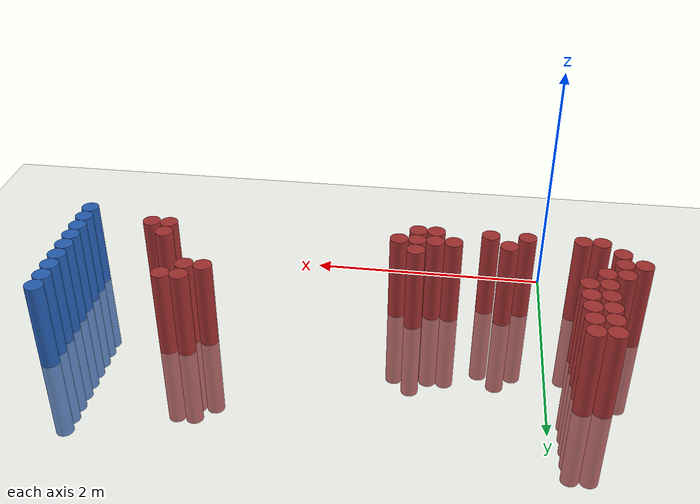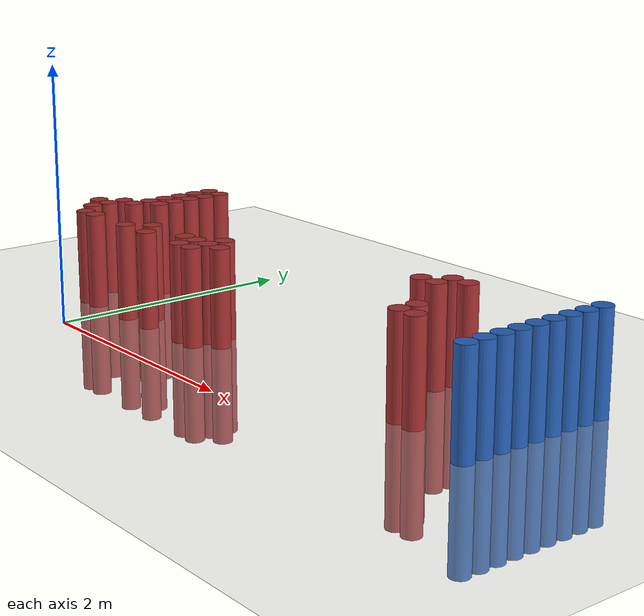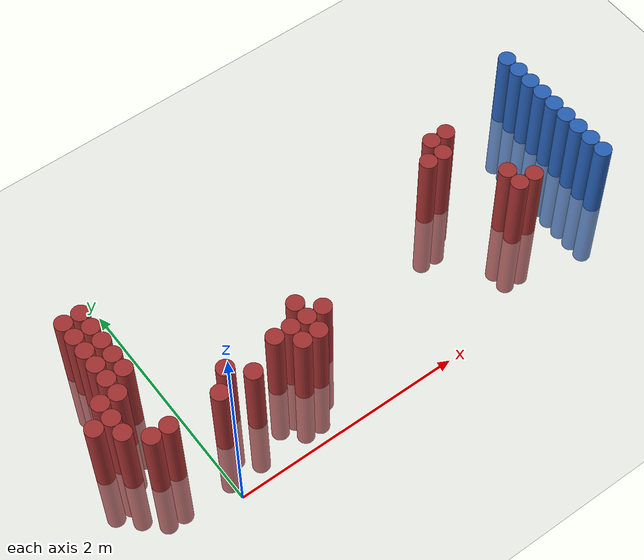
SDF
<sdf version="1.6">
 <world name="default">
  <model name="ground_plane">
   <static>1</static>
   <link name="link">
    <collision name="collision">
     <geometry><plane><normal>0 0 1</normal><size>100 100</size></plane></geometry>
     <surface><friction><ode><mu>100</mu><mu2>50</mu2></ode></friction></surface>
    </collision>
    <visual name="visual">
     <cast_shadows>0</cast_shadows>
     <geometry><plane><normal>0 0 1</normal><size>100 100</size></plane></geometry>
     <material>
      <script><uri>file://media/materials/scripts/gazebo.material</uri><name>Gazebo/Grey</name></script>
     </material>
    </visual>
   </link>
  </model>
  <model name="unit_cylinder_122">
   <static>1</static>
   <pose>3.925000 0.625000 0.000000 0.000000 0.000000 0.000000</pose>
   <link name="link">
    <inertial>
     <mass>1</mass>
     <inertia><ixx>0.145833</ixx><ixy>0</ixy><ixz>0</ixz><iyy>0.145833</iyy><iyz>0</iyz><izz>0.125</izz></inertia>
    </inertial>
    <collision name="collision">
     <geometry><cylinder><radius>0.075000</radius><length>1.5</length></cylinder></geometry>
    </collision>
    <visual name="visual">
     <geometry><cylinder><radius>0.075000</radius><length>1.5</length></cylinder></geometry>
     <material>
      <ambient>0.152000 0.379000 0.720000 1</ambient>
      <diffuse>0.152000 0.379000 0.720000 1</diffuse>
     </material>
     <material>
      <script><name>Gazebo/Grey</name><uri>file://media/materials/scripts/gazebo.material</uri></script>
     </material>
    </visual>
   </link>
  </model>
  <model name="unit_cylinder_124">
   <static>1</static>
   <pose>3.925000 0.775000 0.000000 0.000000 0.000000 0.000000</pose>
   <link name="link">
    <inertial>
     <mass>1</mass>
     <inertia><ixx>0.145833</ixx><ixy>0</ixy><ixz>0</ixz><iyy>0.145833</iyy><iyz>0</iyz><izz>0.125</izz></inertia>
    </inertial>
    <collision name="collision">
     <geometry><cylinder><radius>0.075000</radius><length>1.5</length></cylinder></geometry>
    </collision>
    <visual name="visual">
     <geometry><cylinder><radius>0.075000</radius><length>1.5</length></cylinder></geometry>
     <material>
      <ambient>0.152000 0.379000 0.720000 1</ambient>
      <diffuse>0.152000 0.379000 0.720000 1</diffuse>
     </material>
     <material>
      <script><name>Gazebo/Grey</name><uri>file://media/materials/scripts/gazebo.material</uri></script>
     </material>
    </visual>
   </link>
  </model>
  <model name="unit_cylinder_126">
   <static>1</static>
   <pose>3.925000 0.925000 0.000000 0.000000 0.000000 0.000000</pose>
   <link name="link">
    <inertial>
     <mass>1</mass>
     <inertia><ixx>0.145833</ixx><ixy>0</ixy><ixz>0</ixz><iyy>0.145833</iyy><iyz>0</iyz><izz>0.125</izz></inertia>
    </inertial>
    <collision name="collision">
     <geometry><cylinder><radius>0.075000</radius><length>1.5</length></cylinder></geometry>
    </collision>
    <visual name="visual">
     <geometry><cylinder><radius>0.075000</radius><length>1.5</length></cylinder></geometry>
     <material>
      <ambient>0.152000 0.379000 0.720000 1</ambient>
      <diffuse>0.152000 0.379000 0.720000 1</diffuse>
     </material>
     <material>
      <script><name>Gazebo/Grey</name><uri>file://media/materials/scripts/gazebo.material</uri></script>
     </material>
    </visual>
   </link>
  </model>
  <model name="unit_cylinder_128">
   <static>1</static>
   <pose>3.925000 1.075000 0.000000 0.000000 0.000000 0.000000</pose>
   <link name="link">
    <inertial>
     <mass>1</mass>
     <inertia><ixx>0.145833</ixx><ixy>0</ixy><ixz>0</ixz><iyy>0.145833</iyy><iyz>0</iyz><izz>0.125</izz></inertia>
    </inertial>
    <collision name="collision">
     <geometry><cylinder><radius>0.075000</radius><length>1.5</length></cylinder></geometry>
    </collision>
    <visual name="visual">
     <geometry><cylinder><radius>0.075000</radius><length>1.5</length></cylinder></geometry>
     <material>
      <ambient>0.152000 0.379000 0.720000 1</ambient>
      <diffuse>0.152000 0.379000 0.720000 1</diffuse>
     </material>
     <material>
      <script><name>Gazebo/Grey</name><uri>file://media/materials/scripts/gazebo.material</uri></script>
     </material>
    </visual>
   </link>
  </model>
  <model name="unit_cylinder_130">
   <static>1</static>
   <pose>3.925000 1.225000 0.000000 0.000000 0.000000 0.000000</pose>
   <link name="link">
    <inertial>
     <mass>1</mass>
     <inertia><ixx>0.145833</ixx><ixy>0</ixy><ixz>0</ixz><iyy>0.145833</iyy><iyz>0</iyz><izz>0.125</izz></inertia>
    </inertial>
    <collision name="collision">
     <geometry><cylinder><radius>0.075000</radius><length>1.5</length></cylinder></geometry>
    </collision>
    <visual name="visual">
     <geometry><cylinder><radius>0.075000</radius><length>1.5</length></cylinder></geometry>
     <material>
      <ambient>0.152000 0.379000 0.720000 1</ambient>
      <diffuse>0.152000 0.379000 0.720000 1</diffuse>
     </material>
     <material>
      <script><name>Gazebo/Grey</name><uri>file://media/materials/scripts/gazebo.material</uri></script>
     </material>
    </visual>
   </link>
  </model>
  <model name="unit_cylinder_132">
   <static>1</static>
   <pose>3.925000 1.375000 0.000000 0.000000 0.000000 0.000000</pose>
   <link name="link">
    <inertial>
     <mass>1</mass>
     <inertia><ixx>0.145833</ixx><ixy>0</ixy><ixz>0</ixz><iyy>0.145833</iyy><iyz>0</iyz><izz>0.125</izz></inertia>
    </inertial>
    <collision name="collision">
     <geometry><cylinder><radius>0.075000</radius><length>1.5</length></cylinder></geometry>
    </collision>
    <visual name="visual">
     <geometry><cylinder><radius>0.075000</radius><length>1.5</length></cylinder></geometry>
     <material>
      <ambient>0.152000 0.379000 0.720000 1</ambient>
      <diffuse>0.152000 0.379000 0.720000 1</diffuse>
     </material>
     <material>
      <script><name>Gazebo/Grey</name><uri>file://media/materials/scripts/gazebo.material</uri></script>
     </material>
    </visual>
   </link>
  </model>
  <model name="unit_cylinder_134">
   <static>1</static>
   <pose>3.925000 1.525000 0.000000 0.000000 0.000000 0.000000</pose>
   <link name="link">
    <inertial>
     <mass>1</mass>
     <inertia><ixx>0.145833</ixx><ixy>0</ixy><ixz>0</ixz><iyy>0.145833</iyy><iyz>0</iyz><izz>0.125</izz></inertia>
    </inertial>
    <collision name="collision">
     <geometry><cylinder><radius>0.075000</radius><length>1.5</length></cylinder></geometry>
    </collision>
    <visual name="visual">
     <geometry><cylinder><radius>0.075000</radius><length>1.5</length></cylinder></geometry>
     <material>
      <ambient>0.152000 0.379000 0.720000 1</ambient>
      <diffuse>0.152000 0.379000 0.720000 1</diffuse>
     </material>
     <material>
      <script><name>Gazebo/Grey</name><uri>file://media/materials/scripts/gazebo.material</uri></script>
     </material>
    </visual>
   </link>
  </model>
  <model name="unit_cylinder_136">
   <static>1</static>
   <pose>3.925000 1.675000 0.000000 0.000000 0.000000 0.000000</pose>
   <link name="link">
    <inertial>
     <mass>1</mass>
     <inertia><ixx>0.145833</ixx><ixy>0</ixy><ixz>0</ixz><iyy>0.145833</iyy><iyz>0</iyz><izz>0.125</izz></inertia>
    </inertial>
    <collision name="collision">
     <geometry><cylinder><radius>0.075000</radius><length>1.5</length></cylinder></geometry>
    </collision>
    <visual name="visual">
     <geometry><cylinder><radius>0.075000</radius><length>1.5</length></cylinder></geometry>
     <material>
      <ambient>0.152000 0.379000 0.720000 1</ambient>
      <diffuse>0.152000 0.379000 0.720000 1</diffuse>
     </material>
     <material>
      <script><name>Gazebo/Grey</name><uri>file://media/materials/scripts/gazebo.material</uri></script>
     </material>
    </visual>
   </link>
  </model>
  <model name="unit_cylinder_327">
   <static>1</static>
   <pose>-0.725000 0.775000 0.000000 0.000000 0.000000 0.000000</pose>
   <link name="link">
    <inertial>
     <mass>1</mass>
     <inertia><ixx>0.145833</ixx><ixy>0</ixy><ixz>0</ixz><iyy>0.145833</iyy><iyz>0</iyz><izz>0.125</izz></inertia>
    </inertial>
    <collision name="collision">
     <geometry><cylinder><radius>0.075000</radius><length>1.5</length></cylinder></geometry>
    </collision>
    <visual name="visual">
     <geometry><cylinder><radius>0.075000</radius><length>1.5</length></cylinder></geometry>
     <material>
      <ambient>0.648000 0.192000 0.192000 1</ambient>
      <diffuse>0.648000 0.192000 0.192000 1</diffuse>
     </material>
     <material>
      <script><name>Gazebo/Grey</name><uri>file://media/materials/scripts/gazebo.material</uri></script>
     </material>
    </visual>
   </link>
  </model>
  <model name="unit_cylinder_330">
   <static>1</static>
   <pose>-0.575000 0.625000 0.000000 0.000000 0.000000 0.000000</pose>
   <link name="link">
    <inertial>
     <mass>1</mass>
     <inertia><ixx>0.145833</ixx><ixy>0</ixy><ixz>0</ixz><iyy>0.145833</iyy><iyz>0</iyz><izz>0.125</izz></inertia>
    </inertial>
    <collision name="collision">
     <geometry><cylinder><radius>0.075000</radius><length>1.5</length></cylinder></geometry>
    </collision>
    <visual name="visual">
     <geometry><cylinder><radius>0.075000</radius><length>1.5</length></cylinder></geometry>
     <material>
      <ambient>0.648000 0.192000 0.192000 1</ambient>
      <diffuse>0.648000 0.192000 0.192000 1</diffuse>
     </material>
     <material>
      <script><name>Gazebo/Grey</name><uri>file://media/materials/scripts/gazebo.material</uri></script>
     </material>
    </visual>
   </link>
  </model>
  <model name="unit_cylinder_331">
   <static>1</static>
   <pose>-0.575000 0.775000 0.000000 0.000000 0.000000 0.000000</pose>
   <link name="link">
    <inertial>
     <mass>1</mass>
     <inertia><ixx>0.145833</ixx><ixy>0</ixy><ixz>0</ixz><iyy>0.145833</iyy><iyz>0</iyz><izz>0.125</izz></inertia>
    </inertial>
    <collision name="collision">
     <geometry><cylinder><radius>0.075000</radius><length>1.5</length></cylinder></geometry>
    </collision>
    <visual name="visual">
     <geometry><cylinder><radius>0.075000</radius><length>1.5</length></cylinder></geometry>
     <material>
      <ambient>0.648000 0.192000 0.192000 1</ambient>
      <diffuse>0.648000 0.192000 0.192000 1</diffuse>
     </material>
     <material>
      <script><name>Gazebo/Grey</name><uri>file://media/materials/scripts/gazebo.material</uri></script>
     </material>
    </visual>
   </link>
  </model>
  <model name="unit_cylinder_332">
   <static>1</static>
   <pose>-0.575000 0.925000 0.000000 0.000000 0.000000 0.000000</pose>
   <link name="link">
    <inertial>
     <mass>1</mass>
     <inertia><ixx>0.145833</ixx><ixy>0</ixy><ixz>0</ixz><iyy>0.145833</iyy><iyz>0</iyz><izz>0.125</izz></inertia>
    </inertial>
    <collision name="collision">
     <geometry><cylinder><radius>0.075000</radius><length>1.5</length></cylinder></geometry>
    </collision>
    <visual name="visual">
     <geometry><cylinder><radius>0.075000</radius><length>1.5</length></cylinder></geometry>
     <material>
      <ambient>0.648000 0.192000 0.192000 1</ambient>
      <diffuse>0.648000 0.192000 0.192000 1</diffuse>
     </material>
     <material>
      <script><name>Gazebo/Grey</name><uri>file://media/materials/scripts/gazebo.material</uri></script>
     </material>
    </visual>
   </link>
  </model>
  <model name="unit_cylinder_341">
   <static>1</static>
   <pose>-0.425000 0.475000 0.000000 0.000000 0.000000 0.000000</pose>
   <link name="link">
    <inertial>
     <mass>1</mass>
     <inertia><ixx>0.145833</ixx><ixy>0</ixy><ixz>0</ixz><iyy>0.145833</iyy><iyz>0</iyz><izz>0.125</izz></inertia>
    </inertial>
    <collision name="collision">
     <geometry><cylinder><radius>0.075000</radius><length>1.5</length></cylinder></geometry>
    </collision>
    <visual name="visual">
     <geometry><cylinder><radius>0.075000</radius><length>1.5</length></cylinder></geometry>
     <material>
      <ambient>0.648000 0.192000 0.192000 1</ambient>
      <diffuse>0.648000 0.192000 0.192000 1</diffuse>
     </material>
     <material>
      <script><name>Gazebo/Grey</name><uri>file://media/materials/scripts/gazebo.material</uri></script>
     </material>
    </visual>
   </link>
  </model>
  <model name="unit_cylinder_342">
   <static>1</static>
   <pose>-0.425000 0.925000 0.000000 0.000000 0.000000 0.000000</pose>
   <link name="link">
    <inertial>
     <mass>1</mass>
     <inertia><ixx>0.145833</ixx><ixy>0</ixy><ixz>0</ixz><iyy>0.145833</iyy><iyz>0</iyz><izz>0.125</izz></inertia>
    </inertial>
    <collision name="collision">
     <geometry><cylinder><radius>0.075000</radius><length>1.5</length></cylinder></geometry>
    </collision>
    <visual name="visual">
     <geometry><cylinder><radius>0.075000</radius><length>1.5</length></cylinder></geometry>
     <material>
      <ambient>0.648000 0.192000 0.192000 1</ambient>
      <diffuse>0.648000 0.192000 0.192000 1</diffuse>
     </material>
     <material>
      <script><name>Gazebo/Grey</name><uri>file://media/materials/scripts/gazebo.material</uri></script>
     </material>
    </visual>
   </link>
  </model>
  <model name="unit_cylinder_343">
   <static>1</static>
   <pose>-0.425000 1.075000 0.000000 0.000000 0.000000 0.000000</pose>
   <link name="link">
    <inertial>
     <mass>1</mass>
     <inertia><ixx>0.145833</ixx><ixy>0</ixy><ixz>0</ixz><iyy>0.145833</iyy><iyz>0</iyz><izz>0.125</izz></inertia>
    </inertial>
    <collision name="collision">
     <geometry><cylinder><radius>0.075000</radius><length>1.5</length></cylinder></geometry>
    </collision>
    <visual name="visual">
     <geometry><cylinder><radius>0.075000</radius><length>1.5</length></cylinder></geometry>
     <material>
      <ambient>0.648000 0.192000 0.192000 1</ambient>
      <diffuse>0.648000 0.192000 0.192000 1</diffuse>
     </material>
     <material>
      <script><name>Gazebo/Grey</name><uri>file://media/materials/scripts/gazebo.material</uri></script>
     </material>
    </visual>
   </link>
  </model>
  <model name="unit_cylinder_344">
   <static>1</static>
   <pose>-0.425000 1.225000 0.000000 0.000000 0.000000 0.000000</pose>
   <link name="link">
    <inertial>
     <mass>1</mass>
     <inertia><ixx>0.145833</ixx><ixy>0</ixy><ixz>0</ixz><iyy>0.145833</iyy><iyz>0</iyz><izz>0.125</izz></inertia>
    </inertial>
    <collision name="collision">
     <geometry><cylinder><radius>0.075000</radius><length>1.5</length></cylinder></geometry>
    </collision>
    <visual name="visual">
     <geometry><cylinder><radius>0.075000</radius><length>1.5</length></cylinder></geometry>
     <material>
      <ambient>0.648000 0.192000 0.192000 1</ambient>
      <diffuse>0.648000 0.192000 0.192000 1</diffuse>
     </material>
     <material>
      <script><name>Gazebo/Grey</name><uri>file://media/materials/scripts/gazebo.material</uri></script>
     </material>
    </visual>
   </link>
  </model>
  <model name="unit_cylinder_345">
   <static>1</static>
   <pose>-0.425000 1.375000 0.000000 0.000000 0.000000 0.000000</pose>
   <link name="link">
    <inertial>
     <mass>1</mass>
     <inertia><ixx>0.145833</ixx><ixy>0</ixy><ixz>0</ixz><iyy>0.145833</iyy><iyz>0</iyz><izz>0.125</izz></inertia>
    </inertial>
    <collision name="collision">
     <geometry><cylinder><radius>0.075000</radius><length>1.5</length></cylinder></geometry>
    </collision>
    <visual name="visual">
     <geometry><cylinder><radius>0.075000</radius><length>1.5</length></cylinder></geometry>
     <material>
      <ambient>0.648000 0.192000 0.192000 1</ambient>
      <diffuse>0.648000 0.192000 0.192000 1</diffuse>
     </material>
     <material>
      <script><name>Gazebo/Grey</name><uri>file://media/materials/scripts/gazebo.material</uri></script>
     </material>
    </visual>
   </link>
  </model>
  <model name="unit_cylinder_346">
   <static>1</static>
   <pose>-0.425000 1.525000 0.000000 0.000000 0.000000 0.000000</pose>
   <link name="link">
    <inertial>
     <mass>1</mass>
     <inertia><ixx>0.145833</ixx><ixy>0</ixy><ixz>0</ixz><iyy>0.145833</iyy><iyz>0</iyz><izz>0.125</izz></inertia>
    </inertial>
    <collision name="collision">
     <geometry><cylinder><radius>0.075000</radius><length>1.5</length></cylinder></geometry>
    </collision>
    <visual name="visual">
     <geometry><cylinder><radius>0.075000</radius><length>1.5</length></cylinder></geometry>
     <material>
      <ambient>0.648000 0.192000 0.192000 1</ambient>
      <diffuse>0.648000 0.192000 0.192000 1</diffuse>
     </material>
     <material>
      <script><name>Gazebo/Grey</name><uri>file://media/materials/scripts/gazebo.material</uri></script>
     </material>
    </visual>
   </link>
  </model>
  <model name="unit_cylinder_347">
   <static>1</static>
   <pose>-0.425000 1.675000 0.000000 0.000000 0.000000 0.000000</pose>
   <link name="link">
    <inertial>
     <mass>1</mass>
     <inertia><ixx>0.145833</ixx><ixy>0</ixy><ixz>0</ixz><iyy>0.145833</iyy><iyz>0</iyz><izz>0.125</izz></inertia>
    </inertial>
    <collision name="collision">
     <geometry><cylinder><radius>0.075000</radius><length>1.5</length></cylinder></geometry>
    </collision>
    <visual name="visual">
     <geometry><cylinder><radius>0.075000</radius><length>1.5</length></cylinder></geometry>
     <material>
      <ambient>0.648000 0.192000 0.192000 1</ambient>
      <diffuse>0.648000 0.192000 0.192000 1</diffuse>
     </material>
     <material>
      <script><name>Gazebo/Grey</name><uri>file://media/materials/scripts/gazebo.material</uri></script>
     </material>
    </visual>
   </link>
  </model>
  <model name="unit_cylinder_357">
   <static>1</static>
   <pose>-0.275000 0.475000 0.000000 0.000000 0.000000 0.000000</pose>
   <link name="link">
    <inertial>
     <mass>1</mass>
     <inertia><ixx>0.145833</ixx><ixy>0</ixy><ixz>0</ixz><iyy>0.145833</iyy><iyz>0</iyz><izz>0.125</izz></inertia>
    </inertial>
    <collision name="collision">
     <geometry><cylinder><radius>0.075000</radius><length>1.5</length></cylinder></geometry>
    </collision>
    <visual name="visual">
     <geometry><cylinder><radius>0.075000</radius><length>1.5</length></cylinder></geometry>
     <material>
      <ambient>0.648000 0.192000 0.192000 1</ambient>
      <diffuse>0.648000 0.192000 0.192000 1</diffuse>
     </material>
     <material>
      <script><name>Gazebo/Grey</name><uri>file://media/materials/scripts/gazebo.material</uri></script>
     </material>
    </visual>
   </link>
  </model>
  <model name="unit_cylinder_358">
   <static>1</static>
   <pose>-0.275000 1.075000 0.000000 0.000000 0.000000 0.000000</pose>
   <link name="link">
    <inertial>
     <mass>1</mass>
     <inertia><ixx>0.145833</ixx><ixy>0</ixy><ixz>0</ixz><iyy>0.145833</iyy><iyz>0</iyz><izz>0.125</izz></inertia>
    </inertial>
    <collision name="collision">
     <geometry><cylinder><radius>0.075000</radius><length>1.5</length></cylinder></geometry>
    </collision>
    <visual name="visual">
     <geometry><cylinder><radius>0.075000</radius><length>1.5</length></cylinder></geometry>
     <material>
      <ambient>0.648000 0.192000 0.192000 1</ambient>
      <diffuse>0.648000 0.192000 0.192000 1</diffuse>
     </material>
     <material>
      <script><name>Gazebo/Grey</name><uri>file://media/materials/scripts/gazebo.material</uri></script>
     </material>
    </visual>
   </link>
  </model>
  <model name="unit_cylinder_359">
   <static>1</static>
   <pose>-0.275000 1.225000 0.000000 0.000000 0.000000 0.000000</pose>
   <link name="link">
    <inertial>
     <mass>1</mass>
     <inertia><ixx>0.145833</ixx><ixy>0</ixy><ixz>0</ixz><iyy>0.145833</iyy><iyz>0</iyz><izz>0.125</izz></inertia>
    </inertial>
    <collision name="collision">
     <geometry><cylinder><radius>0.075000</radius><length>1.5</length></cylinder></geometry>
    </collision>
    <visual name="visual">
     <geometry><cylinder><radius>0.075000</radius><length>1.5</length></cylinder></geometry>
     <material>
      <ambient>0.648000 0.192000 0.192000 1</ambient>
      <diffuse>0.648000 0.192000 0.192000 1</diffuse>
     </material>
     <material>
      <script><name>Gazebo/Grey</name><uri>file://media/materials/scripts/gazebo.material</uri></script>
     </material>
    </visual>
   </link>
  </model>
  <model name="unit_cylinder_360">
   <static>1</static>
   <pose>-0.275000 1.375000 0.000000 0.000000 0.000000 0.000000</pose>
   <link name="link">
    <inertial>
     <mass>1</mass>
     <inertia><ixx>0.145833</ixx><ixy>0</ixy><ixz>0</ixz><iyy>0.145833</iyy><iyz>0</iyz><izz>0.125</izz></inertia>
    </inertial>
    <collision name="collision">
     <geometry><cylinder><radius>0.075000</radius><length>1.5</length></cylinder></geometry>
    </collision>
    <visual name="visual">
     <geometry><cylinder><radius>0.075000</radius><length>1.5</length></cylinder></geometry>
     <material>
      <ambient>0.648000 0.192000 0.192000 1</ambient>
      <diffuse>0.648000 0.192000 0.192000 1</diffuse>
     </material>
     <material>
      <script><name>Gazebo/Grey</name><uri>file://media/materials/scripts/gazebo.material</uri></script>
     </material>
    </visual>
   </link>
  </model>
  <model name="unit_cylinder_361">
   <static>1</static>
   <pose>-0.275000 1.525000 0.000000 0.000000 0.000000 0.000000</pose>
   <link name="link">
    <inertial>
     <mass>1</mass>
     <inertia><ixx>0.145833</ixx><ixy>0</ixy><ixz>0</ixz><iyy>0.145833</iyy><iyz>0</iyz><izz>0.125</izz></inertia>
    </inertial>
    <collision name="collision">
     <geometry><cylinder><radius>0.075000</radius><length>1.5</length></cylinder></geometry>
    </collision>
    <visual name="visual">
     <geometry><cylinder><radius>0.075000</radius><length>1.5</length></cylinder></geometry>
     <material>
      <ambient>0.648000 0.192000 0.192000 1</ambient>
      <diffuse>0.648000 0.192000 0.192000 1</diffuse>
     </material>
     <material>
      <script><name>Gazebo/Grey</name><uri>file://media/materials/scripts/gazebo.material</uri></script>
     </material>
    </visual>
   </link>
  </model>
  <model name="unit_cylinder_362">
   <static>1</static>
   <pose>-0.275000 1.675000 0.000000 0.000000 0.000000 0.000000</pose>
   <link name="link">
    <inertial>
     <mass>1</mass>
     <inertia><ixx>0.145833</ixx><ixy>0</ixy><ixz>0</ixz><iyy>0.145833</iyy><iyz>0</iyz><izz>0.125</izz></inertia>
    </inertial>
    <collision name="collision">
     <geometry><cylinder><radius>0.075000</radius><length>1.5</length></cylinder></geometry>
    </collision>
    <visual name="visual">
     <geometry><cylinder><radius>0.075000</radius><length>1.5</length></cylinder></geometry>
     <material>
      <ambient>0.648000 0.192000 0.192000 1</ambient>
      <diffuse>0.648000 0.192000 0.192000 1</diffuse>
     </material>
     <material>
      <script><name>Gazebo/Grey</name><uri>file://media/materials/scripts/gazebo.material</uri></script>
     </material>
    </visual>
   </link>
  </model>
  <model name="unit_cylinder_377">
   <static>1</static>
   <pose>0.175000 0.475000 0.000000 0.000000 0.000000 0.000000</pose>
   <link name="link">
    <inertial>
     <mass>1</mass>
     <inertia><ixx>0.145833</ixx><ixy>0</ixy><ixz>0</ixz><iyy>0.145833</iyy><iyz>0</iyz><izz>0.125</izz></inertia>
    </inertial>
    <collision name="collision">
     <geometry><cylinder><radius>0.075000</radius><length>1.5</length></cylinder></geometry>
    </collision>
    <visual name="visual">
     <geometry><cylinder><radius>0.075000</radius><length>1.5</length></cylinder></geometry>
     <material>
      <ambient>0.648000 0.192000 0.192000 1</ambient>
      <diffuse>0.648000 0.192000 0.192000 1</diffuse>
     </material>
     <material>
      <script><name>Gazebo/Grey</name><uri>file://media/materials/scripts/gazebo.material</uri></script>
     </material>
    </visual>
   </link>
  </model>
  <model name="unit_cylinder_381">
   <static>1</static>
   <pose>0.325000 0.625000 0.000000 0.000000 0.000000 0.000000</pose>
   <link name="link">
    <inertial>
     <mass>1</mass>
     <inertia><ixx>0.145833</ixx><ixy>0</ixy><ixz>0</ixz><iyy>0.145833</iyy><iyz>0</iyz><izz>0.125</izz></inertia>
    </inertial>
    <collision name="collision">
     <geometry><cylinder><radius>0.075000</radius><length>1.5</length></cylinder></geometry>
    </collision>
    <visual name="visual">
     <geometry><cylinder><radius>0.075000</radius><length>1.5</length></cylinder></geometry>
     <material>
      <ambient>0.648000 0.192000 0.192000 1</ambient>
      <diffuse>0.648000 0.192000 0.192000 1</diffuse>
     </material>
     <material>
      <script><name>Gazebo/Grey</name><uri>file://media/materials/scripts/gazebo.material</uri></script>
     </material>
    </visual>
   </link>
  </model>
  <model name="unit_cylinder_384">
   <static>1</static>
   <pose>0.475000 0.475000 0.000000 0.000000 0.000000 0.000000</pose>
   <link name="link">
    <inertial>
     <mass>1</mass>
     <inertia><ixx>0.145833</ixx><ixy>0</ixy><ixz>0</ixz><iyy>0.145833</iyy><iyz>0</iyz><izz>0.125</izz></inertia>
    </inertial>
    <collision name="collision">
     <geometry><cylinder><radius>0.075000</radius><length>1.5</length></cylinder></geometry>
    </collision>
    <visual name="visual">
     <geometry><cylinder><radius>0.075000</radius><length>1.5</length></cylinder></geometry>
     <material>
      <ambient>0.648000 0.192000 0.192000 1</ambient>
      <diffuse>0.648000 0.192000 0.192000 1</diffuse>
     </material>
     <material>
      <script><name>Gazebo/Grey</name><uri>file://media/materials/scripts/gazebo.material</uri></script>
     </material>
    </visual>
   </link>
  </model>
  <model name="unit_cylinder_389">
   <static>1</static>
   <pose>0.775000 0.625000 0.000000 0.000000 0.000000 0.000000</pose>
   <link name="link">
    <inertial>
     <mass>1</mass>
     <inertia><ixx>0.145833</ixx><ixy>0</ixy><ixz>0</ixz><iyy>0.145833</iyy><iyz>0</iyz><izz>0.125</izz></inertia>
    </inertial>
    <collision name="collision">
     <geometry><cylinder><radius>0.075000</radius><length>1.5</length></cylinder></geometry>
    </collision>
    <visual name="visual">
     <geometry><cylinder><radius>0.075000</radius><length>1.5</length></cylinder></geometry>
     <material>
      <ambient>0.648000 0.192000 0.192000 1</ambient>
      <diffuse>0.648000 0.192000 0.192000 1</diffuse>
     </material>
     <material>
      <script><name>Gazebo/Grey</name><uri>file://media/materials/scripts/gazebo.material</uri></script>
     </material>
    </visual>
   </link>
  </model>
  <model name="unit_cylinder_390">
   <static>1</static>
   <pose>0.925000 0.475000 0.000000 0.000000 0.000000 0.000000</pose>
   <link name="link">
    <inertial>
     <mass>1</mass>
     <inertia><ixx>0.145833</ixx><ixy>0</ixy><ixz>0</ixz><iyy>0.145833</iyy><iyz>0</iyz><izz>0.125</izz></inertia>
    </inertial>
    <collision name="collision">
     <geometry><cylinder><radius>0.075000</radius><length>1.5</length></cylinder></geometry>
    </collision>
    <visual name="visual">
     <geometry><cylinder><radius>0.075000</radius><length>1.5</length></cylinder></geometry>
     <material>
      <ambient>0.648000 0.192000 0.192000 1</ambient>
      <diffuse>0.648000 0.192000 0.192000 1</diffuse>
     </material>
     <material>
      <script><name>Gazebo/Grey</name><uri>file://media/materials/scripts/gazebo.material</uri></script>
     </material>
    </visual>
   </link>
  </model>
  <model name="unit_cylinder_391">
   <static>1</static>
   <pose>0.925000 0.625000 0.000000 0.000000 0.000000 0.000000</pose>
   <link name="link">
    <inertial>
     <mass>1</mass>
     <inertia><ixx>0.145833</ixx><ixy>0</ixy><ixz>0</ixz><iyy>0.145833</iyy><iyz>0</iyz><izz>0.125</izz></inertia>
    </inertial>
    <collision name="collision">
     <geometry><cylinder><radius>0.075000</radius><length>1.5</length></cylinder></geometry>
    </collision>
    <visual name="visual">
     <geometry><cylinder><radius>0.075000</radius><length>1.5</length></cylinder></geometry>
     <material>
      <ambient>0.648000 0.192000 0.192000 1</ambient>
      <diffuse>0.648000 0.192000 0.192000 1</diffuse>
     </material>
     <material>
      <script><name>Gazebo/Grey</name><uri>file://media/materials/scripts/gazebo.material</uri></script>
     </material>
    </visual>
   </link>
  </model>
  <model name="unit_cylinder_393">
   <static>1</static>
   <pose>1.075000 0.475000 0.000000 0.000000 0.000000 0.000000</pose>
   <link name="link">
    <inertial>
     <mass>1</mass>
     <inertia><ixx>0.145833</ixx><ixy>0</ixy><ixz>0</ixz><iyy>0.145833</iyy><iyz>0</iyz><izz>0.125</izz></inertia>
    </inertial>
    <collision name="collision">
     <geometry><cylinder><radius>0.075000</radius><length>1.5</length></cylinder></geometry>
    </collision>
    <visual name="visual">
     <geometry><cylinder><radius>0.075000</radius><length>1.5</length></cylinder></geometry>
     <material>
      <ambient>0.648000 0.192000 0.192000 1</ambient>
      <diffuse>0.648000 0.192000 0.192000 1</diffuse>
     </material>
     <material>
      <script><name>Gazebo/Grey</name><uri>file://media/materials/scripts/gazebo.material</uri></script>
     </material>
    </visual>
   </link>
  </model>
  <model name="unit_cylinder_394">
   <static>1</static>
   <pose>1.075000 0.625000 0.000000 0.000000 0.000000 0.000000</pose>
   <link name="link">
    <inertial>
     <mass>1</mass>
     <inertia><ixx>0.145833</ixx><ixy>0</ixy><ixz>0</ixz><iyy>0.145833</iyy><iyz>0</iyz><izz>0.125</izz></inertia>
    </inertial>
    <collision name="collision">
     <geometry><cylinder><radius>0.075000</radius><length>1.5</length></cylinder></geometry>
    </collision>
    <visual name="visual">
     <geometry><cylinder><radius>0.075000</radius><length>1.5</length></cylinder></geometry>
     <material>
      <ambient>0.648000 0.192000 0.192000 1</ambient>
      <diffuse>0.648000 0.192000 0.192000 1</diffuse>
     </material>
     <material>
      <script><name>Gazebo/Grey</name><uri>file://media/materials/scripts/gazebo.material</uri></script>
     </material>
    </visual>
   </link>
  </model>
  <model name="unit_cylinder_395">
   <static>1</static>
   <pose>1.075000 0.775000 0.000000 0.000000 0.000000 0.000000</pose>
   <link name="link">
    <inertial>
     <mass>1</mass>
     <inertia><ixx>0.145833</ixx><ixy>0</ixy><ixz>0</ixz><iyy>0.145833</iyy><iyz>0</iyz><izz>0.125</izz></inertia>
    </inertial>
    <collision name="collision">
     <geometry><cylinder><radius>0.075000</radius><length>1.5</length></cylinder></geometry>
    </collision>
    <visual name="visual">
     <geometry><cylinder><radius>0.075000</radius><length>1.5</length></cylinder></geometry>
     <material>
      <ambient>0.648000 0.192000 0.192000 1</ambient>
      <diffuse>0.648000 0.192000 0.192000 1</diffuse>
     </material>
     <material>
      <script><name>Gazebo/Grey</name><uri>file://media/materials/scripts/gazebo.material</uri></script>
     </material>
    </visual>
   </link>
  </model>
  <model name="unit_cylinder_396">
   <static>1</static>
   <pose>1.225000 0.625000 0.000000 0.000000 0.000000 0.000000</pose>
   <link name="link">
    <inertial>
     <mass>1</mass>
     <inertia><ixx>0.145833</ixx><ixy>0</ixy><ixz>0</ixz><iyy>0.145833</iyy><iyz>0</iyz><izz>0.125</izz></inertia>
    </inertial>
    <collision name="collision">
     <geometry><cylinder><radius>0.075000</radius><length>1.5</length></cylinder></geometry>
    </collision>
    <visual name="visual">
     <geometry><cylinder><radius>0.075000</radius><length>1.5</length></cylinder></geometry>
     <material>
      <ambient>0.648000 0.192000 0.192000 1</ambient>
      <diffuse>0.648000 0.192000 0.192000 1</diffuse>
     </material>
     <material>
      <script><name>Gazebo/Grey</name><uri>file://media/materials/scripts/gazebo.material</uri></script>
     </material>
    </visual>
   </link>
  </model>
  <model name="unit_cylinder_414">
   <static>1</static>
   <pose>2.725000 1.225000 0.000000 0.000000 0.000000 0.000000</pose>
   <link name="link">
    <inertial>
     <mass>1</mass>
     <inertia><ixx>0.145833</ixx><ixy>0</ixy><ixz>0</ixz><iyy>0.145833</iyy><iyz>0</iyz><izz>0.125</izz></inertia>
    </inertial>
    <collision name="collision">
     <geometry><cylinder><radius>0.075000</radius><length>1.5</length></cylinder></geometry>
    </collision>
    <visual name="visual">
     <geometry><cylinder><radius>0.075000</radius><length>1.5</length></cylinder></geometry>
     <material>
      <ambient>0.648000 0.192000 0.192000 1</ambient>
      <diffuse>0.648000 0.192000 0.192000 1</diffuse>
     </material>
     <material>
      <script><name>Gazebo/Grey</name><uri>file://media/materials/scripts/gazebo.material</uri></script>
     </material>
    </visual>
   </link>
  </model>
  <model name="unit_cylinder_416">
   <static>1</static>
   <pose>2.875000 1.225000 0.000000 0.000000 0.000000 0.000000</pose>
   <link name="link">
    <inertial>
     <mass>1</mass>
     <inertia><ixx>0.145833</ixx><ixy>0</ixy><ixz>0</ixz><iyy>0.145833</iyy><iyz>0</iyz><izz>0.125</izz></inertia>
    </inertial>
    <collision name="collision">
     <geometry><cylinder><radius>0.075000</radius><length>1.5</length></cylinder></geometry>
    </collision>
    <visual name="visual">
     <geometry><cylinder><radius>0.075000</radius><length>1.5</length></cylinder></geometry>
     <material>
      <ambient>0.648000 0.192000 0.192000 1</ambient>
      <diffuse>0.648000 0.192000 0.192000 1</diffuse>
     </material>
     <material>
      <script><name>Gazebo/Grey</name><uri>file://media/materials/scripts/gazebo.material</uri></script>
     </material>
    </visual>
   </link>
  </model>
  <model name="unit_cylinder_417">
   <static>1</static>
   <pose>2.875000 1.375000 0.000000 0.000000 0.000000 0.000000</pose>
   <link name="link">
    <inertial>
     <mass>1</mass>
     <inertia><ixx>0.145833</ixx><ixy>0</ixy><ixz>0</ixz><iyy>0.145833</iyy><iyz>0</iyz><izz>0.125</izz></inertia>
    </inertial>
    <collision name="collision">
     <geometry><cylinder><radius>0.075000</radius><length>1.5</length></cylinder></geometry>
    </collision>
    <visual name="visual">
     <geometry><cylinder><radius>0.075000</radius><length>1.5</length></cylinder></geometry>
     <material>
      <ambient>0.648000 0.192000 0.192000 1</ambient>
      <diffuse>0.648000 0.192000 0.192000 1</diffuse>
     </material>
     <material>
      <script><name>Gazebo/Grey</name><uri>file://media/materials/scripts/gazebo.material</uri></script>
     </material>
    </visual>
   </link>
  </model>
  <model name="unit_cylinder_420">
   <static>1</static>
   <pose>3.025000 1.375000 0.000000 0.000000 0.000000 0.000000</pose>
   <link name="link">
    <inertial>
     <mass>1</mass>
     <inertia><ixx>0.145833</ixx><ixy>0</ixy><ixz>0</ixz><iyy>0.145833</iyy><iyz>0</iyz><izz>0.125</izz></inertia>
    </inertial>
    <collision name="collision">
     <geometry><cylinder><radius>0.075000</radius><length>1.5</length></cylinder></geometry>
    </collision>
    <visual name="visual">
     <geometry><cylinder><radius>0.075000</radius><length>1.5</length></cylinder></geometry>
     <material>
      <ambient>0.648000 0.192000 0.192000 1</ambient>
      <diffuse>0.648000 0.192000 0.192000 1</diffuse>
     </material>
     <material>
      <script><name>Gazebo/Grey</name><uri>file://media/materials/scripts/gazebo.material</uri></script>
     </material>
    </visual>
   </link>
  </model>
  <model name="unit_cylinder_424">
   <static>1</static>
   <pose>3.175000 0.625000 0.000000 0.000000 0.000000 0.000000</pose>
   <link name="link">
    <inertial>
     <mass>1</mass>
     <inertia><ixx>0.145833</ixx><ixy>0</ixy><ixz>0</ixz><iyy>0.145833</iyy><iyz>0</iyz><izz>0.125</izz></inertia>
    </inertial>
    <collision name="collision">
     <geometry><cylinder><radius>0.075000</radius><length>1.5</length></cylinder></geometry>
    </collision>
    <visual name="visual">
     <geometry><cylinder><radius>0.075000</radius><length>1.5</length></cylinder></geometry>
     <material>
      <ambient>0.648000 0.192000 0.192000 1</ambient>
      <diffuse>0.648000 0.192000 0.192000 1</diffuse>
     </material>
     <material>
      <script><name>Gazebo/Grey</name><uri>file://media/materials/scripts/gazebo.material</uri></script>
     </material>
    </visual>
   </link>
  </model>
  <model name="unit_cylinder_425">
   <static>1</static>
   <pose>3.175000 0.775000 0.000000 0.000000 0.000000 0.000000</pose>
   <link name="link">
    <inertial>
     <mass>1</mass>
     <inertia><ixx>0.145833</ixx><ixy>0</ixy><ixz>0</ixz><iyy>0.145833</iyy><iyz>0</iyz><izz>0.125</izz></inertia>
    </inertial>
    <collision name="collision">
     <geometry><cylinder><radius>0.075000</radius><length>1.5</length></cylinder></geometry>
    </collision>
    <visual name="visual">
     <geometry><cylinder><radius>0.075000</radius><length>1.5</length></cylinder></geometry>
     <material>
      <ambient>0.648000 0.192000 0.192000 1</ambient>
      <diffuse>0.648000 0.192000 0.192000 1</diffuse>
     </material>
     <material>
      <script><name>Gazebo/Grey</name><uri>file://media/materials/scripts/gazebo.material</uri></script>
     </material>
    </visual>
   </link>
  </model>
  <model name="unit_cylinder_428">
   <static>1</static>
   <pose>3.325000 0.625000 0.000000 0.000000 0.000000 0.000000</pose>
   <link name="link">
    <inertial>
     <mass>1</mass>
     <inertia><ixx>0.145833</ixx><ixy>0</ixy><ixz>0</ixz><iyy>0.145833</iyy><iyz>0</iyz><izz>0.125</izz></inertia>
    </inertial>
    <collision name="collision">
     <geometry><cylinder><radius>0.075000</radius><length>1.5</length></cylinder></geometry>
    </collision>
    <visual name="visual">
     <geometry><cylinder><radius>0.075000</radius><length>1.5</length></cylinder></geometry>
     <material>
      <ambient>0.648000 0.192000 0.192000 1</ambient>
      <diffuse>0.648000 0.192000 0.192000 1</diffuse>
     </material>
     <material>
      <script><name>Gazebo/Grey</name><uri>file://media/materials/scripts/gazebo.material</uri></script>
     </material>
    </visual>
   </link>
  </model>
  <model name="unit_cylinder_462">
   <static>1</static>
   <pose>3.925000 0.475000 0.000000 0.000000 0.000000 0.000000</pose>
   <link name="link">
    <inertial>
     <mass>1</mass>
     <inertia><ixx>0.145833</ixx><ixy>0</ixy><ixz>0</ixz><iyy>0.145833</iyy><iyz>0</iyz><izz>0.125</izz></inertia>
    </inertial>
    <collision name="collision">
     <geometry><cylinder><radius>0.075000</radius><length>1.5</length></cylinder></geometry>
    </collision>
    <visual name="visual">
     <geometry><cylinder><radius>0.075000</radius><length>1.5</length></cylinder></geometry>
     <material>
      <ambient>0.152000 0.379000 0.720000 1</ambient>
      <diffuse>0.152000 0.379000 0.720000 1</diffuse>
     </material>
     <material>
      <script><name>Gazebo/Grey</name><uri>file://media/materials/scripts/gazebo.material</uri></script>
     </material>
    </visual>
   </link>
  </model>
  <model name="unit_cylinder_463">
   <static>1</static>
   <pose>3.925000 0.625000 0.000000 0.000000 0.000000 0.000000</pose>
   <link name="link">
    <inertial>
     <mass>1</mass>
     <inertia><ixx>0.145833</ixx><ixy>0</ixy><ixz>0</ixz><iyy>0.145833</iyy><iyz>0</iyz><izz>0.125</izz></inertia>
    </inertial>
    <collision name="collision">
     <geometry><cylinder><radius>0.075000</radius><length>1.5</length></cylinder></geometry>
    </collision>
    <visual name="visual">
     <geometry><cylinder><radius>0.075000</radius><length>1.5</length></cylinder></geometry>
     <material>
      <ambient>0.152000 0.379000 0.720000 1</ambient>
      <diffuse>0.152000 0.379000 0.720000 1</diffuse>
     </material>
     <material>
      <script><name>Gazebo/Grey</name><uri>file://media/materials/scripts/gazebo.material</uri></script>
     </material>
    </visual>
   </link>
  </model>
  <model name="unit_cylinder_464">
   <static>1</static>
   <pose>3.925000 0.775000 0.000000 0.000000 0.000000 0.000000</pose>
   <link name="link">
    <inertial>
     <mass>1</mass>
     <inertia><ixx>0.145833</ixx><ixy>0</ixy><ixz>0</ixz><iyy>0.145833</iyy><iyz>0</iyz><izz>0.125</izz></inertia>
    </inertial>
    <collision name="collision">
     <geometry><cylinder><radius>0.075000</radius><length>1.5</length></cylinder></geometry>
    </collision>
    <visual name="visual">
     <geometry><cylinder><radius>0.075000</radius><length>1.5</length></cylinder></geometry>
     <material>
      <ambient>0.152000 0.379000 0.720000 1</ambient>
      <diffuse>0.152000 0.379000 0.720000 1</diffuse>
     </material>
     <material>
      <script><name>Gazebo/Grey</name><uri>file://media/materials/scripts/gazebo.material</uri></script>
     </material>
    </visual>
   </link>
  </model>
  <model name="unit_cylinder_465">
   <static>1</static>
   <pose>3.925000 0.925000 0.000000 0.000000 0.000000 0.000000</pose>
   <link name="link">
    <inertial>
     <mass>1</mass>
     <inertia><ixx>0.145833</ixx><ixy>0</ixy><ixz>0</ixz><iyy>0.145833</iyy><iyz>0</iyz><izz>0.125</izz></inertia>
    </inertial>
    <collision name="collision">
     <geometry><cylinder><radius>0.075000</radius><length>1.5</length></cylinder></geometry>
    </collision>
    <visual name="visual">
     <geometry><cylinder><radius>0.075000</radius><length>1.5</length></cylinder></geometry>
     <material>
      <ambient>0.152000 0.379000 0.720000 1</ambient>
      <diffuse>0.152000 0.379000 0.720000 1</diffuse>
     </material>
     <material>
      <script><name>Gazebo/Grey</name><uri>file://media/materials/scripts/gazebo.material</uri></script>
     </material>
    </visual>
   </link>
  </model>
  <model name="unit_cylinder_466">
   <static>1</static>
   <pose>3.925000 1.075000 0.000000 0.000000 0.000000 0.000000</pose>
   <link name="link">
    <inertial>
     <mass>1</mass>
     <inertia><ixx>0.145833</ixx><ixy>0</ixy><ixz>0</ixz><iyy>0.145833</iyy><iyz>0</iyz><izz>0.125</izz></inertia>
    </inertial>
    <collision name="collision">
     <geometry><cylinder><radius>0.075000</radius><length>1.5</length></cylinder></geometry>
    </collision>
    <visual name="visual">
     <geometry><cylinder><radius>0.075000</radius><length>1.5</length></cylinder></geometry>
     <material>
      <ambient>0.152000 0.379000 0.720000 1</ambient>
      <diffuse>0.152000 0.379000 0.720000 1</diffuse>
     </material>
     <material>
      <script><name>Gazebo/Grey</name><uri>file://media/materials/scripts/gazebo.material</uri></script>
     </material>
    </visual>
   </link>
  </model>
  <model name="unit_cylinder_467">
   <static>1</static>
   <pose>3.925000 1.225000 0.000000 0.000000 0.000000 0.000000</pose>
   <link name="link">
    <inertial>
     <mass>1</mass>
     <inertia><ixx>0.145833</ixx><ixy>0</ixy><ixz>0</ixz><iyy>0.145833</iyy><iyz>0</iyz><izz>0.125</izz></inertia>
    </inertial>
    <collision name="collision">
     <geometry><cylinder><radius>0.075000</radius><length>1.5</length></cylinder></geometry>
    </collision>
    <visual name="visual">
     <geometry><cylinder><radius>0.075000</radius><length>1.5</length></cylinder></geometry>
     <material>
      <ambient>0.152000 0.379000 0.720000 1</ambient>
      <diffuse>0.152000 0.379000 0.720000 1</diffuse>
     </material>
     <material>
      <script><name>Gazebo/Grey</name><uri>file://media/materials/scripts/gazebo.material</uri></script>
     </material>
    </visual>
   </link>
  </model>
  <model name="unit_cylinder_468">
   <static>1</static>
   <pose>3.925000 1.375000 0.000000 0.000000 0.000000 0.000000</pose>
   <link name="link">
    <inertial>
     <mass>1</mass>
     <inertia><ixx>0.145833</ixx><ixy>0</ixy><ixz>0</ixz><iyy>0.145833</iyy><iyz>0</iyz><izz>0.125</izz></inertia>
    </inertial>
    <collision name="collision">
     <geometry><cylinder><radius>0.075000</radius><length>1.5</length></cylinder></geometry>
    </collision>
    <visual name="visual">
     <geometry><cylinder><radius>0.075000</radius><length>1.5</length></cylinder></geometry>
     <material>
      <ambient>0.152000 0.379000 0.720000 1</ambient>
      <diffuse>0.152000 0.379000 0.720000 1</diffuse>
     </material>
     <material>
      <script><name>Gazebo/Grey</name><uri>file://media/materials/scripts/gazebo.material</uri></script>
     </material>
    </visual>
   </link>
  </model>
  <model name="unit_cylinder_469">
   <static>1</static>
   <pose>3.925000 1.525000 0.000000 0.000000 0.000000 0.000000</pose>
   <link name="link">
    <inertial>
     <mass>1</mass>
     <inertia><ixx>0.145833</ixx><ixy>0</ixy><ixz>0</ixz><iyy>0.145833</iyy><iyz>0</iyz><izz>0.125</izz></inertia>
    </inertial>
    <collision name="collision">
     <geometry><cylinder><radius>0.075000</radius><length>1.5</length></cylinder></geometry>
    </collision>
    <visual name="visual">
     <geometry><cylinder><radius>0.075000</radius><length>1.5</length></cylinder></geometry>
     <material>
      <ambient>0.152000 0.379000 0.720000 1</ambient>
      <diffuse>0.152000 0.379000 0.720000 1</diffuse>
     </material>
     <material>
      <script><name>Gazebo/Grey</name><uri>file://media/materials/scripts/gazebo.material</uri></script>
     </material>
    </visual>
   </link>
  </model>
 </world>
</sdf>
